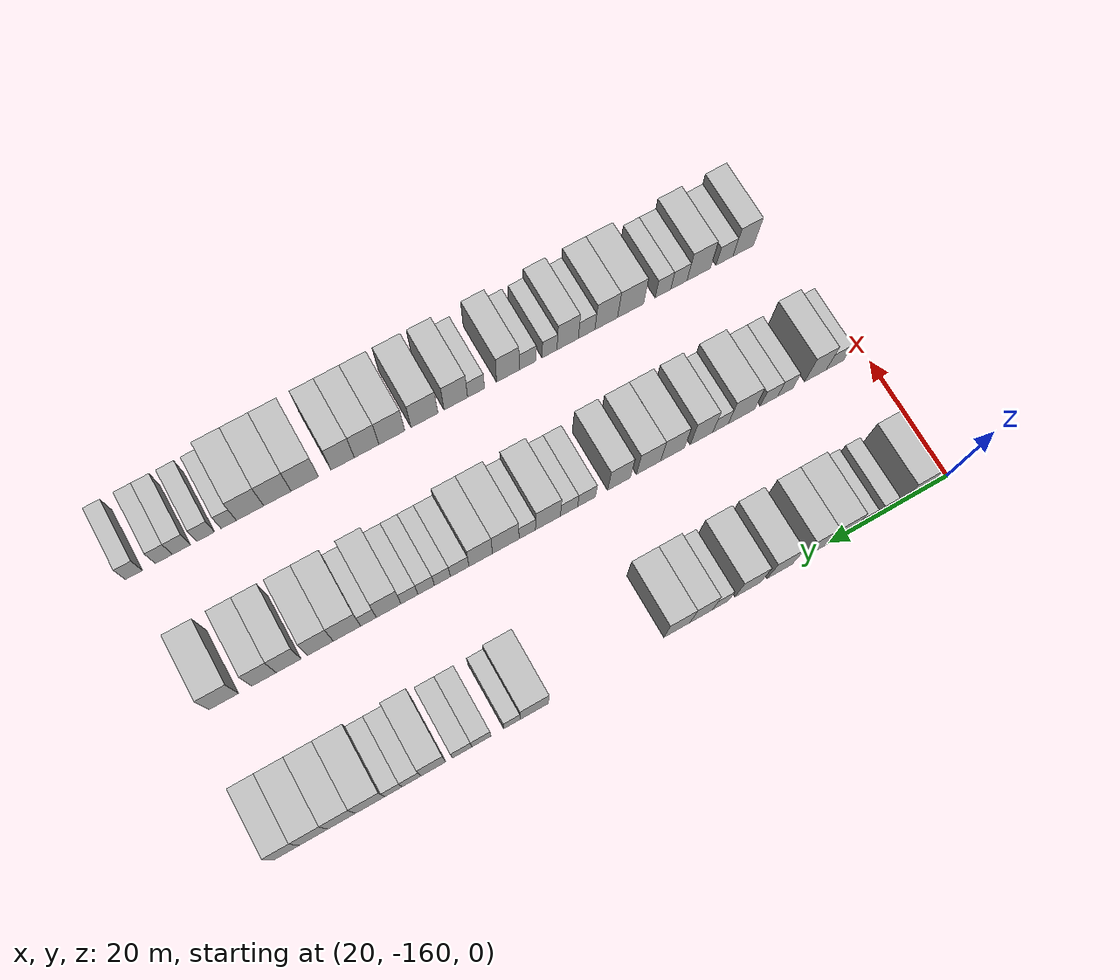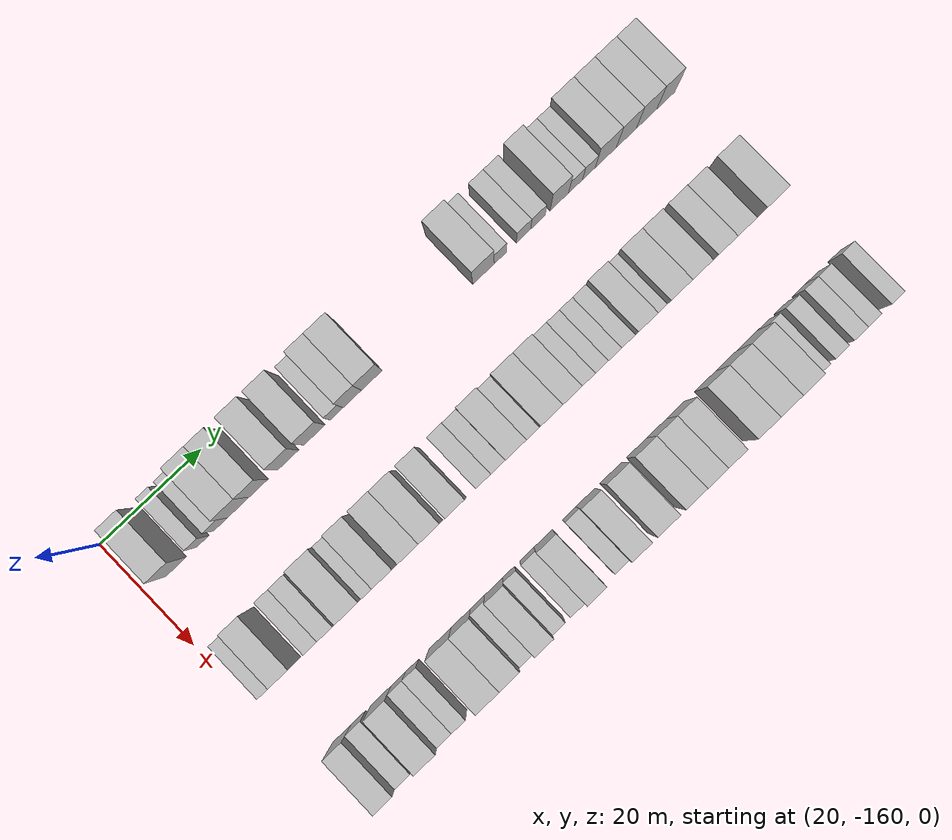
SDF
<sdf version="1.6">
 <world name="default">
  <model name="building_25">
   <static>1</static>
   <pose>25.0000 -154.0993 0 0.000000 0.000000 0.000000</pose>
   <link name="link">
    <pose>0 0 4.50 0 0 0</pose>
    <collision name="collision"><geometry><box><size>10.0000 4.0511 9.0000</size></box></geometry></collision>
    <visual name="visual">
     <cast_shadows>0</cast_shadows>
     <geometry><box><size>10.0000 4.0511 9.0000</size></box></geometry>
     <material>
      <script>
       <uri>model://HANNAS_wall/materials/scripts</uri>
       <uri>model://HANNAS_wall/materials/textures</uri>
       <name>vrc/HANNAS_wall</name>
      </script>
     </material>
    </visual>
   </link>
  </model>
  <model name="building_26">
   <static>1</static>
   <pose>25.0000 -148.8517 0 0.000000 0.000000 0.000000</pose>
   <link name="link">
    <pose>0 0 3.00 0 0 0</pose>
    <collision name="collision"><geometry><box><size>10.0000 2.4440 6.0000</size></box></geometry></collision>
    <visual name="visual">
     <cast_shadows>0</cast_shadows>
     <geometry><box><size>10.0000 2.4440 6.0000</size></box></geometry>
     <material>
      <script>
       <uri>model://HANNAS_wall/materials/scripts</uri>
       <uri>model://HANNAS_wall/materials/textures</uri>
       <name>vrc/HANNAS_wall</name>
      </script>
     </material>
    </visual>
   </link>
  </model>
  <model name="building_27">
   <static>1</static>
   <pose>25.0000 -145.2663 0 0.000000 0.000000 0.000000</pose>
   <link name="link">
    <pose>0 0 3.00 0 0 0</pose>
    <collision name="collision"><geometry><box><size>10.0000 2.7268 6.0000</size></box></geometry></collision>
    <visual name="visual">
     <cast_shadows>0</cast_shadows>
     <geometry><box><size>10.0000 2.7268 6.0000</size></box></geometry>
     <material>
      <script>
       <uri>model://HANNAS_wall/materials/scripts</uri>
       <uri>model://HANNAS_wall/materials/textures</uri>
       <name>vrc/HANNAS_wall</name>
      </script>
     </material>
    </visual>
   </link>
  </model>
  <model name="building_28">
   <static>1</static>
   <pose>25.0000 -141.7348 0 0.000000 0.000000 0.000000</pose>
   <link name="link">
    <pose>0 0 4.50 0 0 0</pose>
    <collision name="collision"><geometry><box><size>10.0000 4.3362 9.0000</size></box></geometry></collision>
    <visual name="visual">
     <cast_shadows>0</cast_shadows>
     <geometry><box><size>10.0000 4.3362 9.0000</size></box></geometry>
     <material>
      <script>
       <uri>model://HANNAS_wall/materials/scripts</uri>
       <uri>model://HANNAS_wall/materials/textures</uri>
       <name>vrc/HANNAS_wall</name>
      </script>
     </material>
    </visual>
   </link>
  </model>
  <model name="building_29">
   <static>1</static>
   <pose>25.0000 -137.6974 0 0.000000 0.000000 0.000000</pose>
   <link name="link">
    <pose>0 0 4.50 0 0 0</pose>
    <collision name="collision"><geometry><box><size>10.0000 3.7385 9.0000</size></box></geometry></collision>
    <visual name="visual">
     <cast_shadows>0</cast_shadows>
     <geometry><box><size>10.0000 3.7385 9.0000</size></box></geometry>
     <material>
      <script>
       <uri>model://HANNAS_wall/materials/scripts</uri>
       <uri>model://HANNAS_wall/materials/textures</uri>
       <name>vrc/HANNAS_wall</name>
      </script>
     </material>
    </visual>
   </link>
  </model>
  <model name="building_30">
   <static>1</static>
   <pose>25.0000 -131.7441 0 0.000000 0.000000 0.000000</pose>
   <link name="link">
    <pose>0 0 4.50 0 0 0</pose>
    <collision name="collision"><geometry><box><size>10.0000 4.1682 9.0000</size></box></geometry></collision>
    <visual name="visual">
     <cast_shadows>0</cast_shadows>
     <geometry><box><size>10.0000 4.1682 9.0000</size></box></geometry>
     <material>
      <script>
       <uri>model://HANNAS_wall/materials/scripts</uri>
       <uri>model://HANNAS_wall/materials/textures</uri>
       <name>vrc/HANNAS_wall</name>
      </script>
     </material>
    </visual>
   </link>
  </model>
  <model name="building_31">
   <static>1</static>
   <pose>25.0000 -126.5214 0 0.000000 0.000000 0.000000</pose>
   <link name="link">
    <pose>0 0 4.50 0 0 0</pose>
    <collision name="collision"><geometry><box><size>10.0000 4.2772 9.0000</size></box></geometry></collision>
    <visual name="visual">
     <cast_shadows>0</cast_shadows>
     <geometry><box><size>10.0000 4.2772 9.0000</size></box></geometry>
     <material>
      <script>
       <uri>model://HANNAS_wall/materials/scripts</uri>
       <uri>model://HANNAS_wall/materials/textures</uri>
       <name>vrc/HANNAS_wall</name>
      </script>
     </material>
    </visual>
   </link>
  </model>
  <model name="building_32">
   <static>1</static>
   <pose>25.0000 -122.0662 0 0.000000 0.000000 0.000000</pose>
   <link name="link">
    <pose>0 0 3.00 0 0 0</pose>
    <collision name="collision"><geometry><box><size>10.0000 2.6332 6.0000</size></box></geometry></collision>
    <visual name="visual">
     <cast_shadows>0</cast_shadows>
     <geometry><box><size>10.0000 2.6332 6.0000</size></box></geometry>
     <material>
      <script>
       <uri>model://HANNAS_wall/materials/scripts</uri>
       <uri>model://HANNAS_wall/materials/textures</uri>
       <name>vrc/HANNAS_wall</name>
      </script>
     </material>
    </visual>
   </link>
  </model>
  <model name="building_33">
   <static>1</static>
   <pose>25.0000 -118.9241 0 0.000000 0.000000 0.000000</pose>
   <link name="link">
    <pose>0 0 4.50 0 0 0</pose>
    <collision name="collision"><geometry><box><size>10.0000 3.6510 9.0000</size></box></geometry></collision>
    <visual name="visual">
     <cast_shadows>0</cast_shadows>
     <geometry><box><size>10.0000 3.6510 9.0000</size></box></geometry>
     <material>
      <script>
       <uri>model://HANNAS_wall/materials/scripts</uri>
       <uri>model://HANNAS_wall/materials/textures</uri>
       <name>vrc/HANNAS_wall</name>
      </script>
     </material>
    </visual>
   </link>
  </model>
  <model name="building_34">
   <static>1</static>
   <pose>25.0000 -114.9840 0 0.000000 0.000000 0.000000</pose>
   <link name="link">
    <pose>0 0 4.50 0 0 0</pose>
    <collision name="collision"><geometry><box><size>10.0000 4.2292 9.0000</size></box></geometry></collision>
    <visual name="visual">
     <cast_shadows>0</cast_shadows>
     <geometry><box><size>10.0000 4.2292 9.0000</size></box></geometry>
     <material>
      <script>
       <uri>model://HANNAS_wall/materials/scripts</uri>
       <uri>model://HANNAS_wall/materials/textures</uri>
       <name>vrc/HANNAS_wall</name>
      </script>
     </material>
    </visual>
   </link>
  </model>
  <model name="building_35">
   <static>1</static>
   <pose>25.0000 -92.2837 0 0.000000 0.000000 0.000000</pose>
   <link name="link">
    <pose>0 0 4.50 0 0 0</pose>
    <collision name="collision"><geometry><box><size>10.0000 4.3905 9.0000</size></box></geometry></collision>
    <visual name="visual">
     <cast_shadows>0</cast_shadows>
     <geometry><box><size>10.0000 4.3905 9.0000</size></box></geometry>
     <material>
      <script>
       <uri>model://HANNAS_wall/materials/scripts</uri>
       <uri>model://HANNAS_wall/materials/textures</uri>
       <name>vrc/HANNAS_wall</name>
      </script>
     </material>
    </visual>
   </link>
  </model>
  <model name="building_36">
   <static>1</static>
   <pose>25.0000 -88.8265 0 0.000000 0.000000 0.000000</pose>
   <link name="link">
    <pose>0 0 3.00 0 0 0</pose>
    <collision name="collision"><geometry><box><size>10.0000 2.5239 6.0000</size></box></geometry></collision>
    <visual name="visual">
     <cast_shadows>0</cast_shadows>
     <geometry><box><size>10.0000 2.5239 6.0000</size></box></geometry>
     <material>
      <script>
       <uri>model://HANNAS_wall/materials/scripts</uri>
       <uri>model://HANNAS_wall/materials/textures</uri>
       <name>vrc/HANNAS_wall</name>
      </script>
     </material>
    </visual>
   </link>
  </model>
  <model name="building_37">
   <static>1</static>
   <pose>25.0000 -84.1011 0 0.000000 0.000000 0.000000</pose>
   <link name="link">
    <pose>0 0 3.00 0 0 0</pose>
    <collision name="collision"><geometry><box><size>10.0000 2.9268 6.0000</size></box></geometry></collision>
    <visual name="visual">
     <cast_shadows>0</cast_shadows>
     <geometry><box><size>10.0000 2.9268 6.0000</size></box></geometry>
     <material>
      <script>
       <uri>model://HANNAS_wall/materials/scripts</uri>
       <uri>model://HANNAS_wall/materials/textures</uri>
       <name>vrc/HANNAS_wall</name>
      </script>
     </material>
    </visual>
   </link>
  </model>
  <model name="building_38">
   <static>1</static>
   <pose>25.0000 -81.1424 0 0.000000 0.000000 0.000000</pose>
   <link name="link">
    <pose>0 0 3.00 0 0 0</pose>
    <collision name="collision"><geometry><box><size>10.0000 2.9907 6.0000</size></box></geometry></collision>
    <visual name="visual">
     <cast_shadows>0</cast_shadows>
     <geometry><box><size>10.0000 2.9907 6.0000</size></box></geometry>
     <material>
      <script>
       <uri>model://HANNAS_wall/materials/scripts</uri>
       <uri>model://HANNAS_wall/materials/textures</uri>
       <name>vrc/HANNAS_wall</name>
      </script>
     </material>
    </visual>
   </link>
  </model>
  <model name="building_39">
   <static>1</static>
   <pose>25.0000 -76.7437 0 0.000000 0.000000 0.000000</pose>
   <link name="link">
    <pose>0 0 4.50 0 0 0</pose>
    <collision name="collision"><geometry><box><size>10.0000 3.8066 9.0000</size></box></geometry></collision>
    <visual name="visual">
     <cast_shadows>0</cast_shadows>
     <geometry><box><size>10.0000 3.8066 9.0000</size></box></geometry>
     <material>
      <script>
       <uri>model://HANNAS_wall/materials/scripts</uri>
       <uri>model://HANNAS_wall/materials/textures</uri>
       <name>vrc/HANNAS_wall</name>
      </script>
     </material>
    </visual>
   </link>
  </model>
  <model name="building_40">
   <static>1</static>
   <pose>25.0000 -73.4082 0 0.000000 0.000000 0.000000</pose>
   <link name="link">
    <pose>0 0 3.00 0 0 0</pose>
    <collision name="collision"><geometry><box><size>10.0000 2.8644 6.0000</size></box></geometry></collision>
    <visual name="visual">
     <cast_shadows>0</cast_shadows>
     <geometry><box><size>10.0000 2.8644 6.0000</size></box></geometry>
     <material>
      <script>
       <uri>model://HANNAS_wall/materials/scripts</uri>
       <uri>model://HANNAS_wall/materials/textures</uri>
       <name>vrc/HANNAS_wall</name>
      </script>
     </material>
    </visual>
   </link>
  </model>
  <model name="building_41">
   <static>1</static>
   <pose>25.0000 -70.6567 0 0.000000 0.000000 0.000000</pose>
   <link name="link">
    <pose>0 0 3.00 0 0 0</pose>
    <collision name="collision"><geometry><box><size>10.0000 2.6385 6.0000</size></box></geometry></collision>
    <visual name="visual">
     <cast_shadows>0</cast_shadows>
     <geometry><box><size>10.0000 2.6385 6.0000</size></box></geometry>
     <material>
      <script>
       <uri>model://HANNAS_wall/materials/scripts</uri>
       <uri>model://HANNAS_wall/materials/textures</uri>
       <name>vrc/HANNAS_wall</name>
      </script>
     </material>
    </visual>
   </link>
  </model>
  <model name="building_42">
   <static>1</static>
   <pose>25.0000 -67.1344 0 0.000000 0.000000 0.000000</pose>
   <link name="link">
    <pose>0 0 4.50 0 0 0</pose>
    <collision name="collision"><geometry><box><size>10.0000 4.4061 9.0000</size></box></geometry></collision>
    <visual name="visual">
     <cast_shadows>0</cast_shadows>
     <geometry><box><size>10.0000 4.4061 9.0000</size></box></geometry>
     <material>
      <script>
       <uri>model://HANNAS_wall/materials/scripts</uri>
       <uri>model://HANNAS_wall/materials/textures</uri>
       <name>vrc/HANNAS_wall</name>
      </script>
     </material>
    </visual>
   </link>
  </model>
  <model name="building_43">
   <static>1</static>
   <pose>25.0000 -62.8742 0 0.000000 0.000000 0.000000</pose>
   <link name="link">
    <pose>0 0 4.50 0 0 0</pose>
    <collision name="collision"><geometry><box><size>10.0000 4.1144 9.0000</size></box></geometry></collision>
    <visual name="visual">
     <cast_shadows>0</cast_shadows>
     <geometry><box><size>10.0000 4.1144 9.0000</size></box></geometry>
     <material>
      <script>
       <uri>model://HANNAS_wall/materials/scripts</uri>
       <uri>model://HANNAS_wall/materials/textures</uri>
       <name>vrc/HANNAS_wall</name>
      </script>
     </material>
    </visual>
   </link>
  </model>
  <model name="building_44">
   <static>1</static>
   <pose>25.0000 -58.6829 0 0.000000 0.000000 0.000000</pose>
   <link name="link">
    <pose>0 0 4.50 0 0 0</pose>
    <collision name="collision"><geometry><box><size>10.0000 4.2681 9.0000</size></box></geometry></collision>
    <visual name="visual">
     <cast_shadows>0</cast_shadows>
     <geometry><box><size>10.0000 4.2681 9.0000</size></box></geometry>
     <material>
      <script>
       <uri>model://HANNAS_wall/materials/scripts</uri>
       <uri>model://HANNAS_wall/materials/textures</uri>
       <name>vrc/HANNAS_wall</name>
      </script>
     </material>
    </visual>
   </link>
  </model>
  <model name="building_45">
   <static>1</static>
   <pose>25.0000 -54.6478 0 0.000000 0.000000 0.000000</pose>
   <link name="link">
    <pose>0 0 4.50 0 0 0</pose>
    <collision name="collision"><geometry><box><size>10.0000 3.8021 9.0000</size></box></geometry></collision>
    <visual name="visual">
     <cast_shadows>0</cast_shadows>
     <geometry><box><size>10.0000 3.8021 9.0000</size></box></geometry>
     <material>
      <script>
       <uri>model://HANNAS_wall/materials/scripts</uri>
       <uri>model://HANNAS_wall/materials/textures</uri>
       <name>vrc/HANNAS_wall</name>
      </script>
     </material>
    </visual>
   </link>
  </model>
  <model name="building_150">
   <static>1</static>
   <pose>47.0000 -155.1970 0 0.000000 0.000000 0.000000</pose>
   <link name="link">
    <pose>0 0 3.00 0 0 0</pose>
    <collision name="collision"><geometry><box><size>10.0000 2.9965 6.0000</size></box></geometry></collision>
    <visual name="visual">
     <cast_shadows>0</cast_shadows>
     <geometry><box><size>10.0000 2.9965 6.0000</size></box></geometry>
     <material>
      <script>
       <uri>model://HANNAS_wall/materials/scripts</uri>
       <uri>model://HANNAS_wall/materials/textures</uri>
       <name>vrc/HANNAS_wall</name>
      </script>
     </material>
    </visual>
   </link>
  </model>
  <model name="building_151">
   <static>1</static>
   <pose>47.0000 -151.8366 0 0.000000 0.000000 0.000000</pose>
   <link name="link">
    <pose>0 0 4.50 0 0 0</pose>
    <collision name="collision"><geometry><box><size>10.0000 3.7243 9.0000</size></box></geometry></collision>
    <visual name="visual">
     <cast_shadows>0</cast_shadows>
     <geometry><box><size>10.0000 3.7243 9.0000</size></box></geometry>
     <material>
      <script>
       <uri>model://HANNAS_wall/materials/scripts</uri>
       <uri>model://HANNAS_wall/materials/textures</uri>
       <name>vrc/HANNAS_wall</name>
      </script>
     </material>
    </visual>
   </link>
  </model>
  <model name="building_152">
   <static>1</static>
   <pose>47.0000 -146.6524 0 0.000000 0.000000 0.000000</pose>
   <link name="link">
    <pose>0 0 3.00 0 0 0</pose>
    <collision name="collision"><geometry><box><size>10.0000 2.6441 6.0000</size></box></geometry></collision>
    <visual name="visual">
     <cast_shadows>0</cast_shadows>
     <geometry><box><size>10.0000 2.6441 6.0000</size></box></geometry>
     <material>
      <script>
       <uri>model://HANNAS_wall/materials/scripts</uri>
       <uri>model://HANNAS_wall/materials/textures</uri>
       <name>vrc/HANNAS_wall</name>
      </script>
     </material>
    </visual>
   </link>
  </model>
  <model name="building_153">
   <static>1</static>
   <pose>47.0000 -143.8539 0 0.000000 0.000000 0.000000</pose>
   <link name="link">
    <pose>0 0 3.00 0 0 0</pose>
    <collision name="collision"><geometry><box><size>10.0000 2.9528 6.0000</size></box></geometry></collision>
    <visual name="visual">
     <cast_shadows>0</cast_shadows>
     <geometry><box><size>10.0000 2.9528 6.0000</size></box></geometry>
     <material>
      <script>
       <uri>model://HANNAS_wall/materials/scripts</uri>
       <uri>model://HANNAS_wall/materials/textures</uri>
       <name>vrc/HANNAS_wall</name>
      </script>
     </material>
    </visual>
   </link>
  </model>
  <model name="building_154">
   <static>1</static>
   <pose>47.0000 -139.1490 0 0.000000 0.000000 0.000000</pose>
   <link name="link">
    <pose>0 0 4.50 0 0 0</pose>
    <collision name="collision"><geometry><box><size>10.0000 4.4570 9.0000</size></box></geometry></collision>
    <visual name="visual">
     <cast_shadows>0</cast_shadows>
     <geometry><box><size>10.0000 4.4570 9.0000</size></box></geometry>
     <material>
      <script>
       <uri>model://HANNAS_wall/materials/scripts</uri>
       <uri>model://HANNAS_wall/materials/textures</uri>
       <name>vrc/HANNAS_wall</name>
      </script>
     </material>
    </visual>
   </link>
  </model>
  <model name="building_155">
   <static>1</static>
   <pose>47.0000 -135.6207 0 0.000000 0.000000 0.000000</pose>
   <link name="link">
    <pose>0 0 3.00 0 0 0</pose>
    <collision name="collision"><geometry><box><size>10.0000 2.5997 6.0000</size></box></geometry></collision>
    <visual name="visual">
     <cast_shadows>0</cast_shadows>
     <geometry><box><size>10.0000 2.5997 6.0000</size></box></geometry>
     <material>
      <script>
       <uri>model://HANNAS_wall/materials/scripts</uri>
       <uri>model://HANNAS_wall/materials/textures</uri>
       <name>vrc/HANNAS_wall</name>
      </script>
     </material>
    </visual>
   </link>
  </model>
  <model name="building_156">
   <static>1</static>
   <pose>47.0000 -132.4308 0 0.000000 0.000000 0.000000</pose>
   <link name="link">
    <pose>0 0 4.50 0 0 0</pose>
    <collision name="collision"><geometry><box><size>10.0000 3.7799 9.0000</size></box></geometry></collision>
    <visual name="visual">
     <cast_shadows>0</cast_shadows>
     <geometry><box><size>10.0000 3.7799 9.0000</size></box></geometry>
     <material>
      <script>
       <uri>model://HANNAS_wall/materials/scripts</uri>
       <uri>model://HANNAS_wall/materials/textures</uri>
       <name>vrc/HANNAS_wall</name>
      </script>
     </material>
    </visual>
   </link>
  </model>
  <model name="building_157">
   <static>1</static>
   <pose>47.0000 -127.5508 0 0.000000 0.000000 0.000000</pose>
   <link name="link">
    <pose>0 0 4.50 0 0 0</pose>
    <collision name="collision"><geometry><box><size>10.0000 3.9802 9.0000</size></box></geometry></collision>
    <visual name="visual">
     <cast_shadows>0</cast_shadows>
     <geometry><box><size>10.0000 3.9802 9.0000</size></box></geometry>
     <material>
      <script>
       <uri>model://HANNAS_wall/materials/scripts</uri>
       <uri>model://HANNAS_wall/materials/textures</uri>
       <name>vrc/HANNAS_wall</name>
      </script>
     </material>
    </visual>
   </link>
  </model>
  <model name="building_158">
   <static>1</static>
   <pose>47.0000 -123.5592 0 0.000000 0.000000 0.000000</pose>
   <link name="link">
    <pose>0 0 4.50 0 0 0</pose>
    <collision name="collision"><geometry><box><size>10.0000 4.0028 9.0000</size></box></geometry></collision>
    <visual name="visual">
     <cast_shadows>0</cast_shadows>
     <geometry><box><size>10.0000 4.0028 9.0000</size></box></geometry>
     <material>
      <script>
       <uri>model://HANNAS_wall/materials/scripts</uri>
       <uri>model://HANNAS_wall/materials/textures</uri>
       <name>vrc/HANNAS_wall</name>
      </script>
     </material>
    </visual>
   </link>
  </model>
  <model name="building_159">
   <static>1</static>
   <pose>47.0000 -118.6787 0 0.000000 0.000000 0.000000</pose>
   <link name="link">
    <pose>0 0 4.50 0 0 0</pose>
    <collision name="collision"><geometry><box><size>10.0000 3.7582 9.0000</size></box></geometry></collision>
    <visual name="visual">
     <cast_shadows>0</cast_shadows>
     <geometry><box><size>10.0000 3.7582 9.0000</size></box></geometry>
     <material>
      <script>
       <uri>model://HANNAS_wall/materials/scripts</uri>
       <uri>model://HANNAS_wall/materials/textures</uri>
       <name>vrc/HANNAS_wall</name>
      </script>
     </material>
    </visual>
   </link>
  </model>
  <model name="building_160">
   <static>1</static>
   <pose>47.0000 -113.3315 0 0.000000 0.000000 0.000000</pose>
   <link name="link">
    <pose>0 0 3.00 0 0 0</pose>
    <collision name="collision"><geometry><box><size>10.0000 2.9361 6.0000</size></box></geometry></collision>
    <visual name="visual">
     <cast_shadows>0</cast_shadows>
     <geometry><box><size>10.0000 2.9361 6.0000</size></box></geometry>
     <material>
      <script>
       <uri>model://HANNAS_wall/materials/scripts</uri>
       <uri>model://HANNAS_wall/materials/textures</uri>
       <name>vrc/HANNAS_wall</name>
      </script>
     </material>
    </visual>
   </link>
  </model>
  <model name="building_161">
   <static>1</static>
   <pose>47.0000 -110.4583 0 0.000000 0.000000 0.000000</pose>
   <link name="link">
    <pose>0 0 3.00 0 0 0</pose>
    <collision name="collision"><geometry><box><size>10.0000 2.8103 6.0000</size></box></geometry></collision>
    <visual name="visual">
     <cast_shadows>0</cast_shadows>
     <geometry><box><size>10.0000 2.8103 6.0000</size></box></geometry>
     <material>
      <script>
       <uri>model://HANNAS_wall/materials/scripts</uri>
       <uri>model://HANNAS_wall/materials/textures</uri>
       <name>vrc/HANNAS_wall</name>
      </script>
     </material>
    </visual>
   </link>
  </model>
  <model name="building_162">
   <static>1</static>
   <pose>47.0000 -107.0343 0 0.000000 0.000000 0.000000</pose>
   <link name="link">
    <pose>0 0 4.50 0 0 0</pose>
    <collision name="collision"><geometry><box><size>10.0000 4.0378 9.0000</size></box></geometry></collision>
    <visual name="visual">
     <cast_shadows>0</cast_shadows>
     <geometry><box><size>10.0000 4.0378 9.0000</size></box></geometry>
     <material>
      <script>
       <uri>model://HANNAS_wall/materials/scripts</uri>
       <uri>model://HANNAS_wall/materials/textures</uri>
       <name>vrc/HANNAS_wall</name>
      </script>
     </material>
    </visual>
   </link>
  </model>
  <model name="building_163">
   <static>1</static>
   <pose>47.0000 -103.6843 0 0.000000 0.000000 0.000000</pose>
   <link name="link">
    <pose>0 0 3.00 0 0 0</pose>
    <collision name="collision"><geometry><box><size>10.0000 2.6621 6.0000</size></box></geometry></collision>
    <visual name="visual">
     <cast_shadows>0</cast_shadows>
     <geometry><box><size>10.0000 2.6621 6.0000</size></box></geometry>
     <material>
      <script>
       <uri>model://HANNAS_wall/materials/scripts</uri>
       <uri>model://HANNAS_wall/materials/textures</uri>
       <name>vrc/HANNAS_wall</name>
      </script>
     </material>
    </visual>
   </link>
  </model>
  <model name="building_164">
   <static>1</static>
   <pose>47.0000 -100.2167 0 0.000000 0.000000 0.000000</pose>
   <link name="link">
    <pose>0 0 4.50 0 0 0</pose>
    <collision name="collision"><geometry><box><size>10.0000 4.2731 9.0000</size></box></geometry></collision>
    <visual name="visual">
     <cast_shadows>0</cast_shadows>
     <geometry><box><size>10.0000 4.2731 9.0000</size></box></geometry>
     <material>
      <script>
       <uri>model://HANNAS_wall/materials/scripts</uri>
       <uri>model://HANNAS_wall/materials/textures</uri>
       <name>vrc/HANNAS_wall</name>
      </script>
     </material>
    </visual>
   </link>
  </model>
  <model name="building_165">
   <static>1</static>
   <pose>47.0000 -96.2127 0 0.000000 0.000000 0.000000</pose>
   <link name="link">
    <pose>0 0 4.50 0 0 0</pose>
    <collision name="collision"><geometry><box><size>10.0000 3.7349 9.0000</size></box></geometry></collision>
    <visual name="visual">
     <cast_shadows>0</cast_shadows>
     <geometry><box><size>10.0000 3.7349 9.0000</size></box></geometry>
     <material>
      <script>
       <uri>model://HANNAS_wall/materials/scripts</uri>
       <uri>model://HANNAS_wall/materials/textures</uri>
       <name>vrc/HANNAS_wall</name>
      </script>
     </material>
    </visual>
   </link>
  </model>
  <model name="building_166">
   <static>1</static>
   <pose>47.0000 -92.8691 0 0.000000 0.000000 0.000000</pose>
   <link name="link">
    <pose>0 0 3.00 0 0 0</pose>
    <collision name="collision"><geometry><box><size>10.0000 2.9523 6.0000</size></box></geometry></collision>
    <visual name="visual">
     <cast_shadows>0</cast_shadows>
     <geometry><box><size>10.0000 2.9523 6.0000</size></box></geometry>
     <material>
      <script>
       <uri>model://HANNAS_wall/materials/scripts</uri>
       <uri>model://HANNAS_wall/materials/textures</uri>
       <name>vrc/HANNAS_wall</name>
      </script>
     </material>
    </visual>
   </link>
  </model>
  <model name="building_167">
   <static>1</static>
   <pose>47.0000 -90.1194 0 0.000000 0.000000 0.000000</pose>
   <link name="link">
    <pose>0 0 3.00 0 0 0</pose>
    <collision name="collision"><geometry><box><size>10.0000 2.5470 6.0000</size></box></geometry></collision>
    <visual name="visual">
     <cast_shadows>0</cast_shadows>
     <geometry><box><size>10.0000 2.5470 6.0000</size></box></geometry>
     <material>
      <script>
       <uri>model://HANNAS_wall/materials/scripts</uri>
       <uri>model://HANNAS_wall/materials/textures</uri>
       <name>vrc/HANNAS_wall</name>
      </script>
     </material>
    </visual>
   </link>
  </model>
  <model name="building_168">
   <static>1</static>
   <pose>47.0000 -87.5420 0 0.000000 0.000000 0.000000</pose>
   <link name="link">
    <pose>0 0 3.00 0 0 0</pose>
    <collision name="collision"><geometry><box><size>10.0000 2.6078 6.0000</size></box></geometry></collision>
    <visual name="visual">
     <cast_shadows>0</cast_shadows>
     <geometry><box><size>10.0000 2.6078 6.0000</size></box></geometry>
     <material>
      <script>
       <uri>model://HANNAS_wall/materials/scripts</uri>
       <uri>model://HANNAS_wall/materials/textures</uri>
       <name>vrc/HANNAS_wall</name>
      </script>
     </material>
    </visual>
   </link>
  </model>
  <model name="building_169">
   <static>1</static>
   <pose>47.0000 -84.8999 0 0.000000 0.000000 0.000000</pose>
   <link name="link">
    <pose>0 0 3.00 0 0 0</pose>
    <collision name="collision"><geometry><box><size>10.0000 2.6764 6.0000</size></box></geometry></collision>
    <visual name="visual">
     <cast_shadows>0</cast_shadows>
     <geometry><box><size>10.0000 2.6764 6.0000</size></box></geometry>
     <material>
      <script>
       <uri>model://HANNAS_wall/materials/scripts</uri>
       <uri>model://HANNAS_wall/materials/textures</uri>
       <name>vrc/HANNAS_wall</name>
      </script>
     </material>
    </visual>
   </link>
  </model>
  <model name="building_170">
   <static>1</static>
   <pose>47.0000 -81.6261 0 0.000000 0.000000 0.000000</pose>
   <link name="link">
    <pose>0 0 4.50 0 0 0</pose>
    <collision name="collision"><geometry><box><size>10.0000 3.8712 9.0000</size></box></geometry></collision>
    <visual name="visual">
     <cast_shadows>0</cast_shadows>
     <geometry><box><size>10.0000 3.8712 9.0000</size></box></geometry>
     <material>
      <script>
       <uri>model://HANNAS_wall/materials/scripts</uri>
       <uri>model://HANNAS_wall/materials/textures</uri>
       <name>vrc/HANNAS_wall</name>
      </script>
     </material>
    </visual>
   </link>
  </model>
  <model name="building_171">
   <static>1</static>
   <pose>47.0000 -78.4745 0 0.000000 0.000000 0.000000</pose>
   <link name="link">
    <pose>0 0 3.00 0 0 0</pose>
    <collision name="collision"><geometry><box><size>10.0000 2.4320 6.0000</size></box></geometry></collision>
    <visual name="visual">
     <cast_shadows>0</cast_shadows>
     <geometry><box><size>10.0000 2.4320 6.0000</size></box></geometry>
     <material>
      <script>
       <uri>model://HANNAS_wall/materials/scripts</uri>
       <uri>model://HANNAS_wall/materials/textures</uri>
       <name>vrc/HANNAS_wall</name>
      </script>
     </material>
    </visual>
   </link>
  </model>
  <model name="building_172">
   <static>1</static>
   <pose>47.0000 -75.1305 0 0.000000 0.000000 0.000000</pose>
   <link name="link">
    <pose>0 0 4.50 0 0 0</pose>
    <collision name="collision"><geometry><box><size>10.0000 4.2559 9.0000</size></box></geometry></collision>
    <visual name="visual">
     <cast_shadows>0</cast_shadows>
     <geometry><box><size>10.0000 4.2559 9.0000</size></box></geometry>
     <material>
      <script>
       <uri>model://HANNAS_wall/materials/scripts</uri>
       <uri>model://HANNAS_wall/materials/textures</uri>
       <name>vrc/HANNAS_wall</name>
      </script>
     </material>
    </visual>
   </link>
  </model>
  <model name="building_173">
   <static>1</static>
   <pose>47.0000 -71.0062 0 0.000000 0.000000 0.000000</pose>
   <link name="link">
    <pose>0 0 4.50 0 0 0</pose>
    <collision name="collision"><geometry><box><size>10.0000 3.9927 9.0000</size></box></geometry></collision>
    <visual name="visual">
     <cast_shadows>0</cast_shadows>
     <geometry><box><size>10.0000 3.9927 9.0000</size></box></geometry>
     <material>
      <script>
       <uri>model://HANNAS_wall/materials/scripts</uri>
       <uri>model://HANNAS_wall/materials/textures</uri>
       <name>vrc/HANNAS_wall</name>
      </script>
     </material>
    </visual>
   </link>
  </model>
  <model name="building_174">
   <static>1</static>
   <pose>47.0000 -66.1067 0 0.000000 0.000000 0.000000</pose>
   <link name="link">
    <pose>0 0 4.50 0 0 0</pose>
    <collision name="collision"><geometry><box><size>10.0000 3.8064 9.0000</size></box></geometry></collision>
    <visual name="visual">
     <cast_shadows>0</cast_shadows>
     <geometry><box><size>10.0000 3.8064 9.0000</size></box></geometry>
     <material>
      <script>
       <uri>model://HANNAS_wall/materials/scripts</uri>
       <uri>model://HANNAS_wall/materials/textures</uri>
       <name>vrc/HANNAS_wall</name>
      </script>
     </material>
    </visual>
   </link>
  </model>
  <model name="building_175">
   <static>1</static>
   <pose>47.0000 -62.3251 0 0.000000 0.000000 0.000000</pose>
   <link name="link">
    <pose>0 0 4.50 0 0 0</pose>
    <collision name="collision"><geometry><box><size>10.0000 3.7568 9.0000</size></box></geometry></collision>
    <visual name="visual">
     <cast_shadows>0</cast_shadows>
     <geometry><box><size>10.0000 3.7568 9.0000</size></box></geometry>
     <material>
      <script>
       <uri>model://HANNAS_wall/materials/scripts</uri>
       <uri>model://HANNAS_wall/materials/textures</uri>
       <name>vrc/HANNAS_wall</name>
      </script>
     </material>
    </visual>
   </link>
  </model>
  <model name="building_176">
   <static>1</static>
   <pose>47.0000 -56.2225 0 0.000000 0.000000 0.000000</pose>
   <link name="link">
    <pose>0 0 4.50 0 0 0</pose>
    <collision name="collision"><geometry><box><size>10.0000 4.4483 9.0000</size></box></geometry></collision>
    <visual name="visual">
     <cast_shadows>0</cast_shadows>
     <geometry><box><size>10.0000 4.4483 9.0000</size></box></geometry>
     <material>
      <script>
       <uri>model://HANNAS_wall/materials/scripts</uri>
       <uri>model://HANNAS_wall/materials/textures</uri>
       <name>vrc/HANNAS_wall</name>
      </script>
     </material>
    </visual>
   </link>
  </model>
  <model name="building_276">
   <static>1</static>
   <pose>69.0000 -153.2070 0 0.000000 0.000000 0.000000</pose>
   <link name="link">
    <pose>0 0 4.50 0 0 0</pose>
    <collision name="collision"><geometry><box><size>10.0000 3.6123 9.0000</size></box></geometry></collision>
    <visual name="visual">
     <cast_shadows>0</cast_shadows>
     <geometry><box><size>10.0000 3.6123 9.0000</size></box></geometry>
     <material>
      <script>
       <uri>model://HANNAS_wall/materials/scripts</uri>
       <uri>model://HANNAS_wall/materials/textures</uri>
       <name>vrc/HANNAS_wall</name>
      </script>
     </material>
    </visual>
   </link>
  </model>
  <model name="building_277">
   <static>1</static>
   <pose>69.0000 -149.9252 0 0.000000 0.000000 0.000000</pose>
   <link name="link">
    <pose>0 0 3.00 0 0 0</pose>
    <collision name="collision"><geometry><box><size>10.0000 2.9514 6.0000</size></box></geometry></collision>
    <visual name="visual">
     <cast_shadows>0</cast_shadows>
     <geometry><box><size>10.0000 2.9514 6.0000</size></box></geometry>
     <material>
      <script>
       <uri>model://HANNAS_wall/materials/scripts</uri>
       <uri>model://HANNAS_wall/materials/textures</uri>
       <name>vrc/HANNAS_wall</name>
      </script>
     </material>
    </visual>
   </link>
  </model>
  <model name="building_278">
   <static>1</static>
   <pose>69.0000 -145.4168 0 0.000000 0.000000 0.000000</pose>
   <link name="link">
    <pose>0 0 4.50 0 0 0</pose>
    <collision name="collision"><geometry><box><size>10.0000 4.0654 9.0000</size></box></geometry></collision>
    <visual name="visual">
     <cast_shadows>0</cast_shadows>
     <geometry><box><size>10.0000 4.0654 9.0000</size></box></geometry>
     <material>
      <script>
       <uri>model://HANNAS_wall/materials/scripts</uri>
       <uri>model://HANNAS_wall/materials/textures</uri>
       <name>vrc/HANNAS_wall</name>
      </script>
     </material>
    </visual>
   </link>
  </model>
  <model name="building_279">
   <static>1</static>
   <pose>69.0000 -141.9734 0 0.000000 0.000000 0.000000</pose>
   <link name="link">
    <pose>0 0 3.00 0 0 0</pose>
    <collision name="collision"><geometry><box><size>10.0000 2.8213 6.0000</size></box></geometry></collision>
    <visual name="visual">
     <cast_shadows>0</cast_shadows>
     <geometry><box><size>10.0000 2.8213 6.0000</size></box></geometry>
     <material>
      <script>
       <uri>model://HANNAS_wall/materials/scripts</uri>
       <uri>model://HANNAS_wall/materials/textures</uri>
       <name>vrc/HANNAS_wall</name>
      </script>
     </material>
    </visual>
   </link>
  </model>
  <model name="building_280">
   <static>1</static>
   <pose>69.0000 -139.2209 0 0.000000 0.000000 0.000000</pose>
   <link name="link">
    <pose>0 0 3.00 0 0 0</pose>
    <collision name="collision"><geometry><box><size>10.0000 2.6836 6.0000</size></box></geometry></collision>
    <visual name="visual">
     <cast_shadows>0</cast_shadows>
     <geometry><box><size>10.0000 2.6836 6.0000</size></box></geometry>
     <material>
      <script>
       <uri>model://HANNAS_wall/materials/scripts</uri>
       <uri>model://HANNAS_wall/materials/textures</uri>
       <name>vrc/HANNAS_wall</name>
      </script>
     </material>
    </visual>
   </link>
  </model>
  <model name="building_281">
   <static>1</static>
   <pose>69.0000 -133.6529 0 0.000000 0.000000 0.000000</pose>
   <link name="link">
    <pose>0 0 4.50 0 0 0</pose>
    <collision name="collision"><geometry><box><size>10.0000 4.4523 9.0000</size></box></geometry></collision>
    <visual name="visual">
     <cast_shadows>0</cast_shadows>
     <geometry><box><size>10.0000 4.4523 9.0000</size></box></geometry>
     <material>
      <script>
       <uri>model://HANNAS_wall/materials/scripts</uri>
       <uri>model://HANNAS_wall/materials/textures</uri>
       <name>vrc/HANNAS_wall</name>
      </script>
     </material>
    </visual>
   </link>
  </model>
  <model name="building_282">
   <static>1</static>
   <pose>69.0000 -129.4990 0 0.000000 0.000000 0.000000</pose>
   <link name="link">
    <pose>0 0 4.50 0 0 0</pose>
    <collision name="collision"><geometry><box><size>10.0000 3.8555 9.0000</size></box></geometry></collision>
    <visual name="visual">
     <cast_shadows>0</cast_shadows>
     <geometry><box><size>10.0000 3.8555 9.0000</size></box></geometry>
     <material>
      <script>
       <uri>model://HANNAS_wall/materials/scripts</uri>
       <uri>model://HANNAS_wall/materials/textures</uri>
       <name>vrc/HANNAS_wall</name>
      </script>
     </material>
    </visual>
   </link>
  </model>
  <model name="building_283">
   <static>1</static>
   <pose>69.0000 -126.1673 0 0.000000 0.000000 0.000000</pose>
   <link name="link">
    <pose>0 0 3.00 0 0 0</pose>
    <collision name="collision"><geometry><box><size>10.0000 2.8080 6.0000</size></box></geometry></collision>
    <visual name="visual">
     <cast_shadows>0</cast_shadows>
     <geometry><box><size>10.0000 2.8080 6.0000</size></box></geometry>
     <material>
      <script>
       <uri>model://HANNAS_wall/materials/scripts</uri>
       <uri>model://HANNAS_wall/materials/textures</uri>
       <name>vrc/HANNAS_wall</name>
      </script>
     </material>
    </visual>
   </link>
  </model>
  <model name="building_284">
   <static>1</static>
   <pose>69.0000 -122.9547 0 0.000000 0.000000 0.000000</pose>
   <link name="link">
    <pose>0 0 4.50 0 0 0</pose>
    <collision name="collision"><geometry><box><size>10.0000 3.6173 9.0000</size></box></geometry></collision>
    <visual name="visual">
     <cast_shadows>0</cast_shadows>
     <geometry><box><size>10.0000 3.6173 9.0000</size></box></geometry>
     <material>
      <script>
       <uri>model://HANNAS_wall/materials/scripts</uri>
       <uri>model://HANNAS_wall/materials/textures</uri>
       <name>vrc/HANNAS_wall</name>
      </script>
     </material>
    </visual>
   </link>
  </model>
  <model name="building_285">
   <static>1</static>
   <pose>69.0000 -119.9005 0 0.000000 0.000000 0.000000</pose>
   <link name="link">
    <pose>0 0 3.00 0 0 0</pose>
    <collision name="collision"><geometry><box><size>10.0000 2.4911 6.0000</size></box></geometry></collision>
    <visual name="visual">
     <cast_shadows>0</cast_shadows>
     <geometry><box><size>10.0000 2.4911 6.0000</size></box></geometry>
     <material>
      <script>
       <uri>model://HANNAS_wall/materials/scripts</uri>
       <uri>model://HANNAS_wall/materials/textures</uri>
       <name>vrc/HANNAS_wall</name>
      </script>
     </material>
    </visual>
   </link>
  </model>
  <model name="building_286">
   <static>1</static>
   <pose>69.0000 -116.2302 0 0.000000 0.000000 0.000000</pose>
   <link name="link">
    <pose>0 0 3.00 0 0 0</pose>
    <collision name="collision"><geometry><box><size>10.0000 2.8496 6.0000</size></box></geometry></collision>
    <visual name="visual">
     <cast_shadows>0</cast_shadows>
     <geometry><box><size>10.0000 2.8496 6.0000</size></box></geometry>
     <material>
      <script>
       <uri>model://HANNAS_wall/materials/scripts</uri>
       <uri>model://HANNAS_wall/materials/textures</uri>
       <name>vrc/HANNAS_wall</name>
      </script>
     </material>
    </visual>
   </link>
  </model>
  <model name="building_287">
   <static>1</static>
   <pose>69.0000 -112.9275 0 0.000000 0.000000 0.000000</pose>
   <link name="link">
    <pose>0 0 4.50 0 0 0</pose>
    <collision name="collision"><geometry><box><size>10.0000 3.7557 9.0000</size></box></geometry></collision>
    <visual name="visual">
     <cast_shadows>0</cast_shadows>
     <geometry><box><size>10.0000 3.7557 9.0000</size></box></geometry>
     <material>
      <script>
       <uri>model://HANNAS_wall/materials/scripts</uri>
       <uri>model://HANNAS_wall/materials/textures</uri>
       <name>vrc/HANNAS_wall</name>
      </script>
     </material>
    </visual>
   </link>
  </model>
  <model name="building_288">
   <static>1</static>
   <pose>69.0000 -107.6530 0 0.000000 0.000000 0.000000</pose>
   <link name="link">
    <pose>0 0 3.00 0 0 0</pose>
    <collision name="collision"><geometry><box><size>10.0000 2.7933 6.0000</size></box></geometry></collision>
    <visual name="visual">
     <cast_shadows>0</cast_shadows>
     <geometry><box><size>10.0000 2.7933 6.0000</size></box></geometry>
     <material>
      <script>
       <uri>model://HANNAS_wall/materials/scripts</uri>
       <uri>model://HANNAS_wall/materials/textures</uri>
       <name>vrc/HANNAS_wall</name>
      </script>
     </material>
    </visual>
   </link>
  </model>
  <model name="building_289">
   <static>1</static>
   <pose>69.0000 -104.3206 0 0.000000 0.000000 0.000000</pose>
   <link name="link">
    <pose>0 0 4.50 0 0 0</pose>
    <collision name="collision"><geometry><box><size>10.0000 3.8717 9.0000</size></box></geometry></collision>
    <visual name="visual">
     <cast_shadows>0</cast_shadows>
     <geometry><box><size>10.0000 3.8717 9.0000</size></box></geometry>
     <material>
      <script>
       <uri>model://HANNAS_wall/materials/scripts</uri>
       <uri>model://HANNAS_wall/materials/textures</uri>
       <name>vrc/HANNAS_wall</name>
      </script>
     </material>
    </visual>
   </link>
  </model>
  <model name="building_290">
   <static>1</static>
   <pose>69.0000 -99.1796 0 0.000000 0.000000 0.000000</pose>
   <link name="link">
    <pose>0 0 4.50 0 0 0</pose>
    <collision name="collision"><geometry><box><size>10.0000 4.4102 9.0000</size></box></geometry></collision>
    <visual name="visual">
     <cast_shadows>0</cast_shadows>
     <geometry><box><size>10.0000 4.4102 9.0000</size></box></geometry>
     <material>
      <script>
       <uri>model://HANNAS_wall/materials/scripts</uri>
       <uri>model://HANNAS_wall/materials/textures</uri>
       <name>vrc/HANNAS_wall</name>
      </script>
     </material>
    </visual>
   </link>
  </model>
  <model name="building_291">
   <static>1</static>
   <pose>69.0000 -93.8702 0 0.000000 0.000000 0.000000</pose>
   <link name="link">
    <pose>0 0 4.50 0 0 0</pose>
    <collision name="collision"><geometry><box><size>10.0000 4.2086 9.0000</size></box></geometry></collision>
    <visual name="visual">
     <cast_shadows>0</cast_shadows>
     <geometry><box><size>10.0000 4.2086 9.0000</size></box></geometry>
     <material>
      <script>
       <uri>model://HANNAS_wall/materials/scripts</uri>
       <uri>model://HANNAS_wall/materials/textures</uri>
       <name>vrc/HANNAS_wall</name>
      </script>
     </material>
    </visual>
   </link>
  </model>
  <model name="building_292">
   <static>1</static>
   <pose>69.0000 -89.7718 0 0.000000 0.000000 0.000000</pose>
   <link name="link">
    <pose>0 0 4.50 0 0 0</pose>
    <collision name="collision"><geometry><box><size>10.0000 3.9882 9.0000</size></box></geometry></collision>
    <visual name="visual">
     <cast_shadows>0</cast_shadows>
     <geometry><box><size>10.0000 3.9882 9.0000</size></box></geometry>
     <material>
      <script>
       <uri>model://HANNAS_wall/materials/scripts</uri>
       <uri>model://HANNAS_wall/materials/textures</uri>
       <name>vrc/HANNAS_wall</name>
      </script>
     </material>
    </visual>
   </link>
  </model>
  <model name="building_293">
   <static>1</static>
   <pose>69.0000 -85.9055 0 0.000000 0.000000 0.000000</pose>
   <link name="link">
    <pose>0 0 4.50 0 0 0</pose>
    <collision name="collision"><geometry><box><size>10.0000 3.7445 9.0000</size></box></geometry></collision>
    <visual name="visual">
     <cast_shadows>0</cast_shadows>
     <geometry><box><size>10.0000 3.7445 9.0000</size></box></geometry>
     <material>
      <script>
       <uri>model://HANNAS_wall/materials/scripts</uri>
       <uri>model://HANNAS_wall/materials/textures</uri>
       <name>vrc/HANNAS_wall</name>
      </script>
     </material>
    </visual>
   </link>
  </model>
  <model name="building_294">
   <static>1</static>
   <pose>69.0000 -79.8546 0 0.000000 0.000000 0.000000</pose>
   <link name="link">
    <pose>0 0 4.50 0 0 0</pose>
    <collision name="collision"><geometry><box><size>10.0000 4.3573 9.0000</size></box></geometry></collision>
    <visual name="visual">
     <cast_shadows>0</cast_shadows>
     <geometry><box><size>10.0000 4.3573 9.0000</size></box></geometry>
     <material>
      <script>
       <uri>model://HANNAS_wall/materials/scripts</uri>
       <uri>model://HANNAS_wall/materials/textures</uri>
       <name>vrc/HANNAS_wall</name>
      </script>
     </material>
    </visual>
   </link>
  </model>
  <model name="building_295">
   <static>1</static>
   <pose>69.0000 -75.5011 0 0.000000 0.000000 0.000000</pose>
   <link name="link">
    <pose>0 0 4.50 0 0 0</pose>
    <collision name="collision"><geometry><box><size>10.0000 4.3498 9.0000</size></box></geometry></collision>
    <visual name="visual">
     <cast_shadows>0</cast_shadows>
     <geometry><box><size>10.0000 4.3498 9.0000</size></box></geometry>
     <material>
      <script>
       <uri>model://HANNAS_wall/materials/scripts</uri>
       <uri>model://HANNAS_wall/materials/textures</uri>
       <name>vrc/HANNAS_wall</name>
      </script>
     </material>
    </visual>
   </link>
  </model>
  <model name="building_296">
   <static>1</static>
   <pose>69.0000 -71.1664 0 0.000000 0.000000 0.000000</pose>
   <link name="link">
    <pose>0 0 4.50 0 0 0</pose>
    <collision name="collision"><geometry><box><size>10.0000 4.3196 9.0000</size></box></geometry></collision>
    <visual name="visual">
     <cast_shadows>0</cast_shadows>
     <geometry><box><size>10.0000 4.3196 9.0000</size></box></geometry>
     <material>
      <script>
       <uri>model://HANNAS_wall/materials/scripts</uri>
       <uri>model://HANNAS_wall/materials/textures</uri>
       <name>vrc/HANNAS_wall</name>
      </script>
     </material>
    </visual>
   </link>
  </model>
  <model name="building_297">
   <static>1</static>
   <pose>69.0000 -67.8052 0 0.000000 0.000000 0.000000</pose>
   <link name="link">
    <pose>0 0 3.00 0 0 0</pose>
    <collision name="collision"><geometry><box><size>10.0000 2.4028 6.0000</size></box></geometry></collision>
    <visual name="visual">
     <cast_shadows>0</cast_shadows>
     <geometry><box><size>10.0000 2.4028 6.0000</size></box></geometry>
     <material>
      <script>
       <uri>model://HANNAS_wall/materials/scripts</uri>
       <uri>model://HANNAS_wall/materials/textures</uri>
       <name>vrc/HANNAS_wall</name>
      </script>
     </material>
    </visual>
   </link>
  </model>
  <model name="building_298">
   <static>1</static>
   <pose>69.0000 -64.2219 0 0.000000 0.000000 0.000000</pose>
   <link name="link">
    <pose>0 0 3.00 0 0 0</pose>
    <collision name="collision"><geometry><box><size>10.0000 2.7637 6.0000</size></box></geometry></collision>
    <visual name="visual">
     <cast_shadows>0</cast_shadows>
     <geometry><box><size>10.0000 2.7637 6.0000</size></box></geometry>
     <material>
      <script>
       <uri>model://HANNAS_wall/materials/scripts</uri>
       <uri>model://HANNAS_wall/materials/textures</uri>
       <name>vrc/HANNAS_wall</name>
      </script>
     </material>
    </visual>
   </link>
  </model>
  <model name="building_299">
   <static>1</static>
   <pose>69.0000 -60.4416 0 0.000000 0.000000 0.000000</pose>
   <link name="link">
    <pose>0 0 3.00 0 0 0</pose>
    <collision name="collision"><geometry><box><size>10.0000 2.7970 6.0000</size></box></geometry></collision>
    <visual name="visual">
     <cast_shadows>0</cast_shadows>
     <geometry><box><size>10.0000 2.7970 6.0000</size></box></geometry>
     <material>
      <script>
       <uri>model://HANNAS_wall/materials/scripts</uri>
       <uri>model://HANNAS_wall/materials/textures</uri>
       <name>vrc/HANNAS_wall</name>
      </script>
     </material>
    </visual>
   </link>
  </model>
  <model name="building_300">
   <static>1</static>
   <pose>69.0000 -57.7120 0 0.000000 0.000000 0.000000</pose>
   <link name="link">
    <pose>0 0 3.00 0 0 0</pose>
    <collision name="collision"><geometry><box><size>10.0000 2.6622 6.0000</size></box></geometry></collision>
    <visual name="visual">
     <cast_shadows>0</cast_shadows>
     <geometry><box><size>10.0000 2.6622 6.0000</size></box></geometry>
     <material>
      <script>
       <uri>model://HANNAS_wall/materials/scripts</uri>
       <uri>model://HANNAS_wall/materials/textures</uri>
       <name>vrc/HANNAS_wall</name>
      </script>
     </material>
    </visual>
   </link>
  </model>
  <model name="building_301">
   <static>1</static>
   <pose>69.0000 -53.0737 0 0.000000 0.000000 0.000000</pose>
   <link name="link">
    <pose>0 0 3.00 0 0 0</pose>
    <collision name="collision"><geometry><box><size>10.0000 2.6144 6.0000</size></box></geometry></collision>
    <visual name="visual">
     <cast_shadows>0</cast_shadows>
     <geometry><box><size>10.0000 2.6144 6.0000</size></box></geometry>
     <material>
      <script>
       <uri>model://HANNAS_wall/materials/scripts</uri>
       <uri>model://HANNAS_wall/materials/textures</uri>
       <name>vrc/HANNAS_wall</name>
      </script>
     </material>
    </visual>
   </link>
  </model>
 </world>
</sdf>
